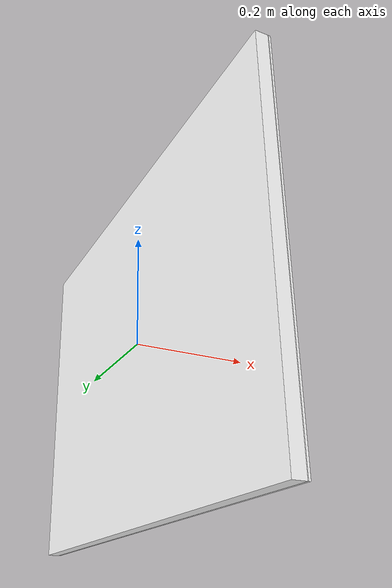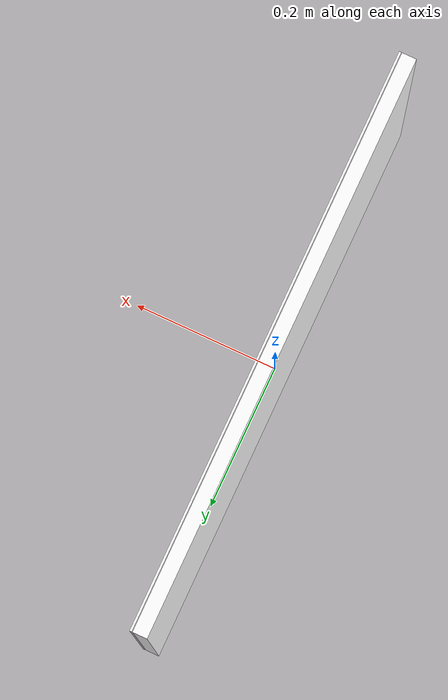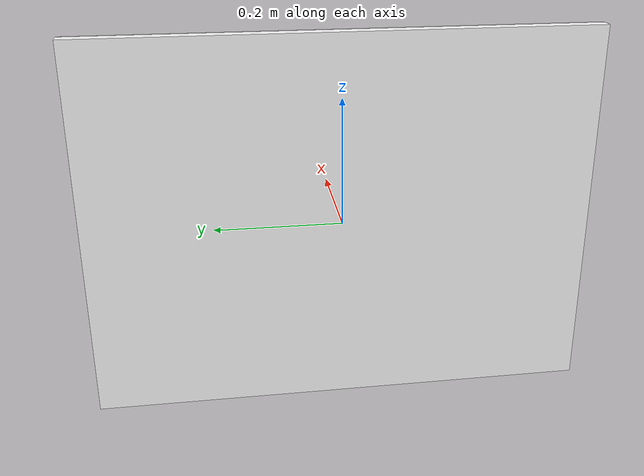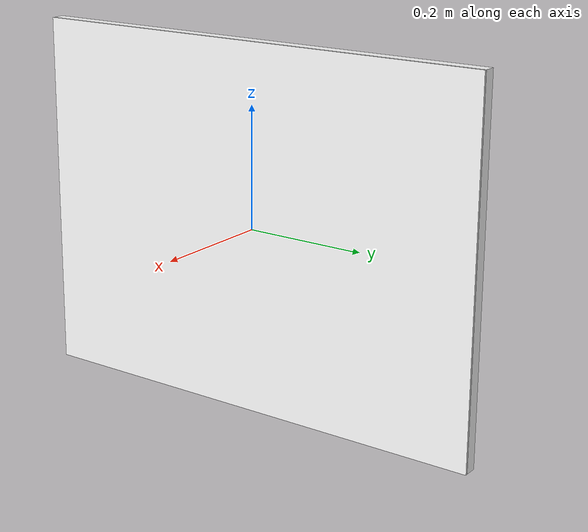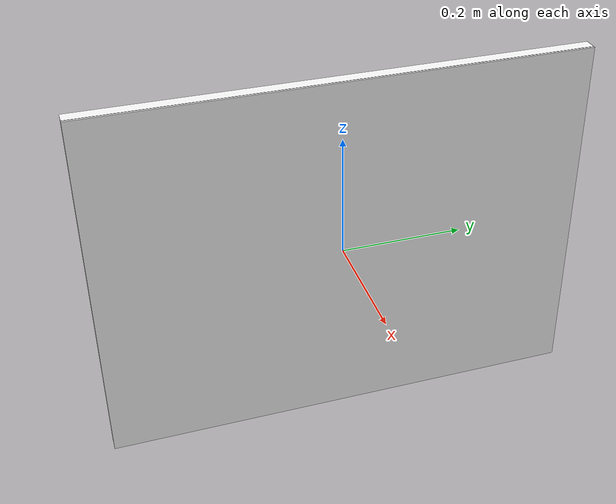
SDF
<?xml version='1.0' encoding='utf-8'?>
<sdf version="1.8">
  <model name="aruco_gridboard_target_a1_080x060">
    <static>true</static>

    <link name="target_link">
      <visual name="target_visual">
        <geometry>
          <box>
            <size>0.020000 0.800000 0.600000</size>
          </box>
        </geometry>

        <material>
          <ambient>1 1 1 1</ambient>
          <diffuse>1 1 1 1</diffuse>
          <specular>0.1 0.1 0.1 1</specular>
          <pbr>
            <metal>
              <albedo_map>model://aruco_gridboard_target_a1_080x060/materials/textures/aruco_board.png</albedo_map>
              <roughness>0.8</roughness>
              <metalness>0.0</metalness>
            </metal>
          </pbr>
        </material>
      </visual>

      <collision name="target_collision">
        <geometry>
          <box>
            <size>0.020000 0.800000 0.600000</size>
          </box>
        </geometry>
      </collision>
    <visual name="white_back_cover"><pose>0.0125 0 0 0 0 0</pose><cast_shadows>false</cast_shadows><geometry><box><size>0.003000 0.800000 0.600000</size></box></geometry><material><ambient>1 1 1 1</ambient><diffuse>1 1 1 1</diffuse><specular>0 0 0 1</specular><emissive>1 1 1 1</emissive></material></visual></link>
  </model>
</sdf>
